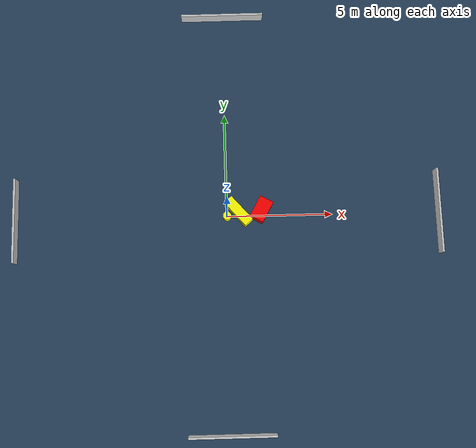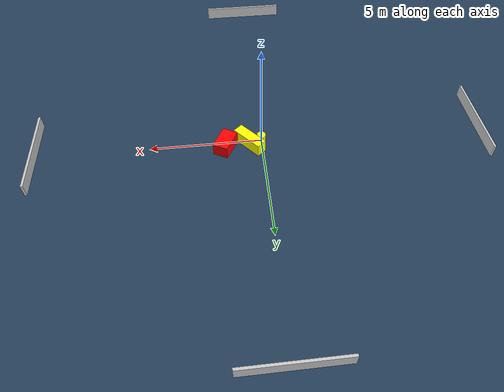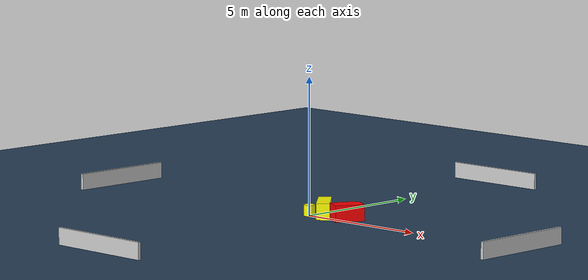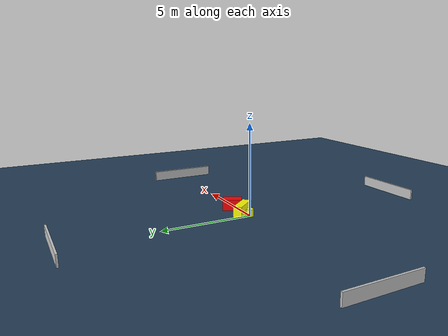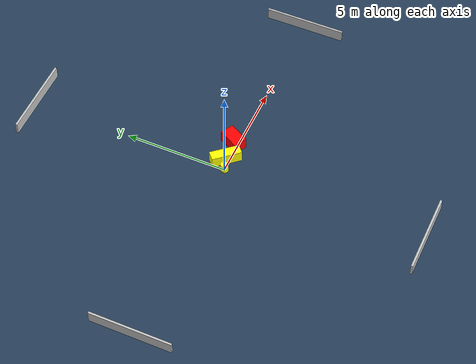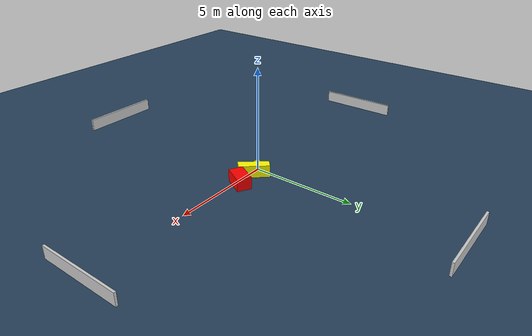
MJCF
<?xml version="1.0" ?>
<mujoco model="generated_environment">
  <option timestep="0.01" integrator="RK4" cone="elliptic"/>
  <default>
    <geom density="1"/>
  </default>
  <asset>
    <texture builtin="gradient" height="3072" name="skybox" rgb1="0.3 0.5 0.7" rgb2="0 0 0" type="skybox" width="512"/>
    <texture builtin="checker" height="300" name="groundplane" rgb1="0.2 0.3 0.4" rgb2="0.1 0.2 0.3" type="2d" width="300"/>
    <material name="groundplane" reflectance="0.2" texrepeat="5 5" texture="groundplane"/>
  </asset>
  <worldbody>
    <light dir="0 0 -1" directional="true" pos="0 0 1.5"/>
    <geom condim="3" friction="0.5 0.005 0.001" material="groundplane" name="floor" pos="0 0 0" size="0 0 0.05" type="plane"/>
    <body name="walls">
      <geom name="wall_1" condim="4" pos="-10.0 0.0 0.3" rgba="0.800000011920929 0.800000011920929 0.800000011920929 1.0" size="0.05 2.0 0.3" type="box"/>
      <geom name="wall_2" condim="4" pos="10.0 0.0 0.3" rgba="0.800000011920929 0.800000011920929 0.800000011920929 1.0" size="0.05 2.0 0.3" type="box"/>
      <geom name="wall_3" condim="4" pos="0.0 -10.0 0.3" rgba="0.800000011920929 0.800000011920929 0.800000011920929 1.0" size="2.0 0.05 0.3" type="box"/>
      <geom name="wall_4" condim="4" pos="0.0 10.0 0.3" rgba="0.800000011920929 0.800000011920929 0.800000011920929 1.0" size="2.0 0.05 0.3" type="box"/>
    </body>
    <body name="robot">
      <joint name="joint_x" type="slide" pos="0 0 0" axis="1 0 0"/>
      <joint name="joint_y" type="slide" pos="0 0 0" axis="0 1 0"/>
      <geom name="robot" type="cylinder" pos="0.0 0.0 0.2" size="0.2 0.2 0.0" mass="5.0" friction="1.0 0.005 0.0001" condim="4" rgba="1.0 1.0 0.0 1.0"/>
    </body>
    <body name="obstacle_1_movable">
      <geom name="obstacle_1_movable" condim="4" pos="0.5372245038662117 0.18898173143548666 0.3" euler="0 0 311.212988126376" friction="0.0 0.005 0.001" rgba="1.0 1.0 0.0 1.0" size="0.7377412704224833 0.23791722987748049 0.3" type="box" mass="0.1"/>
      <joint type="free"/>
    </body>
    <body name="obstacle_2_static">
      <geom name="obstacle_2_static" condim="4" pos="1.6275280553339198 0.2519271977375525 0.3" euler="0 0 240.84668128549467" friction="0.0 0.005 0.001" rgba="1.0 0.0 0.0 1.0" size="0.5344000968922245 0.34141313645853777 0.3" type="box"/>
    </body>
  </worldbody>
  <actuator>
    <motor name="actuator_x" joint="joint_x" gear="1" ctrlrange="-1 1"/>
    <motor name="actuator_y" joint="joint_y" gear="1" ctrlrange="-1 1"/>
  </actuator>
</mujoco>
